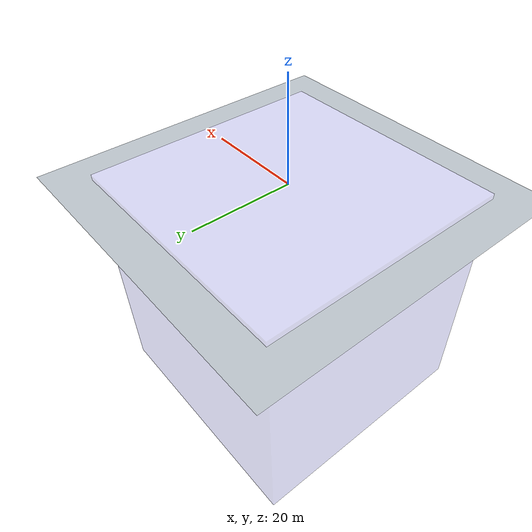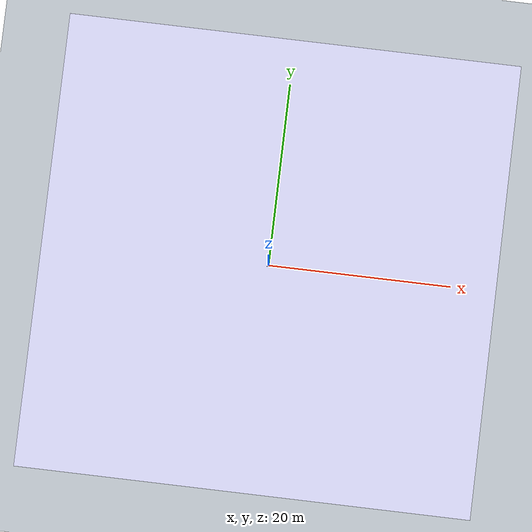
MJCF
<?xml version="1.0" ?>
<mujoco model="animat_0">
  <compiler boundmass="1e-10" boundinertia="1.0000000000000001e-15" balanceinertia="false" angle="radian" eulerseq="xyz" discardvisual="false" fusestatic="true" inertiafromgeom="false">
    <lengthrange mode="none" useexisting="true"/>
  </compiler>
  <option timestep="0.001" gravity="0 0 -9.8100000000000005" impratio="10" integrator="implicitfast" cone="elliptic" solver="CG" iterations="50" noslip_iterations="1000" noslip_tolerance="9.9999999999999995e-07" ccd_iterations="1000" ccd_tolerance="9.9999999999999995e-07">
    <flag energy="enable"/>
  </option>
  <size njmax="4096" nconmax="4096" nkey="1"/>
  <visual>
    <global offwidth="1280" offheight="720"/>
    <quality shadowsize="1024" offsamples="4" numslices="28" numstacks="16" numquads="4"/>
    <map stiffness="100" stiffnessrot="500" force="1" torque="1" alpha="0.29999999999999999" fogstart="3" fogend="10" znear="1.0000000000000001e-05" zfar="3" haze="0.29999999999999999" shadowclip="1" shadowscale="0.29999999999999999" actuatortendon="2"/>
    <scale forcewidth="0.01" contactwidth="0.029999999999999999" contactheight="0.01" connect="0.01" com="0.01" camera="0.10000000000000001" light="0.10000000000000001" selectpoint="0.01" jointlength="0.01" jointwidth="0.01" actuatorlength="0.01" actuatorwidth="0.01" framelength="0.01" framewidth="0.01" constraint="0.01" slidercrank="0.01"/>
  </visual>
  <statistic meanmass="0" meaninertia="0" meansize="0" extent="100"/>
  <default>
    <default class="/"/>
  </default>
  <asset>
    <texture name="texture_grid" type="2d" builtin="checker" rgb1="0.10000000000000001 0.20000000000000001 0.29999999999999999" rgb2="0.20000000000000001 0.29999999999999999 0.40000000000000002" mark="edge" markrgb="0.20000000000000001 0.29999999999999999 0.40000000000000002" width="300" height="300"/>
    <material name="material_grid" class="/" texture="texture_grid" texrepeat="1 1" texuniform="true" reflectance="0.20000000000000001"/>
    <material name="material_water_visual" class="/" rgba="0.5 0.5 0.90000000000000002 0.29999999999999999"/>
    <material name="a0_material_base_link_visual" class="/" rgba="1 1 0 1"/>
    <texture name="skybox" type="skybox" builtin="gradient" rgb1="0.40000000000000002 0.59999999999999998 0.80000000000000004" rgb2="0 0 0" mark="random" markrgb="1 1 1" width="800" height="800"/>
  </asset>
  <worldbody>
    <body name="arena_flat" pos="0 0 -1" quat="1 0 0 0">
      <body name="floor" pos="0 0 0" quat="1 0 0 0">
        <geom name="floor_collision" class="/" type="plane" contype="1" conaffinity="1" condim="3" group="2" size="100 100 1" material="material_grid" friction="0 0 0" margin="0" pos="0 0 0" quat="1 0 0 0"/>
        <geom name="floor_visual" class="/" type="plane" contype="0" conaffinity="0" group="1" size="100 100 1" material="material_grid" pos="0 0 0" quat="1 0 0 0"/>
      </body>
    </body>
    <body name="arena_water" pos="0 0 0" quat="1 0 0 0">
      <body name="water" pos="0 0 0" quat="1 0 0 0">
        <geom name="water_visual" class="/" type="box" contype="0" conaffinity="0" group="1" size="25 25 25" material="material_water_visual" pos="0 0 -25" quat="1 0 0 0"/>
      </body>
    </body>
    <body name="a0_sphere" pos="-0.14999999999999999 -0.14999999999999999 0.20000000000000001" quat="0.2298488470659302 -0.42073549240394825 0.42073549240394825 0.77015115293406988">
      <freejoint name="a0_root_sphere"/>
      <body name="a0_base_link" pos="0 0 0" quat="1 0 0 0">
        <geom name="a0_base_link_collision" class="/" type="sphere" contype="1" conaffinity="0" condim="3" group="2" size="0.050000000000000003 0.050000000000000003 0.050000000000000003" friction="0.5 0 0" margin="0" pos="0 0 0" quat="1 0 0 0" fluidshape="ellipsoid" fluidcoef="0 0 0 0 0"/>
        <geom name="a0_base_link_visual" class="/" type="sphere" contype="0" conaffinity="0" group="1" size="0.050000000000000003 0.050000000000000003 0.050000000000000003" material="a0_material_base_link_visual" pos="0 0 0" quat="1 0 0 0"/>
        <inertial pos="0 0 0" mass="0.52359877559829893" fullinertia="0.00052359877559829903 0.00052359877559829903 0.00052359877559829903 0 0 0"/>
      </body>
      <light name="light_animat" class="/" mode="trackcom" directional="false" castshadow="true" active="true" pos="-1.98411064855555 1.5317172526439542 2.1718994434000241" dir="1.98411064855555 -1.5317172526439542 -2.1718994434000241" attenuation="1 0 0" cutoff="45" exponent="1" ambient="0 0 0" diffuse="0.69999999999999996 0.69999999999999996 0.69999999999999996" specular="0.29999999999999999 0.29999999999999999 0.29999999999999999"/>
      <camera name="camera_a0_sphere_0" class="/" mode="trackcom" fovy="70" ipd="0.068000000000000005" pos="-0.78603555171443096 0.40200966954889555 -0.46961296514276324" quat="0.27542341010122051 0.43610111656089062 -0.73798529707964111 -0.43512694997762813"/>
      <camera name="camera_a0_sphere_1" class="/" mode="trackcom" fovy="70" ipd="0.068000000000000005" pos="-0.84147098480789662 0.45464871341284085 0.29192658172642888" quat="0.2298488470659302 0.42073549240394825 -0.42073549240394825 -0.77015115293406988"/>
      <camera name="camera_a0_sphere_2" class="/" mode="trackcom" fovy="70" ipd="0.068000000000000005" pos="-0.16829419696157943 0.63123204855070791 -0.78308566846261085" quat="-0.061350494137226819 0.4754839260532876 -0.79306565322219713 -0.37576325341006905"/>
      <camera name="camera_a0_sphere_3" class="/" mode="trackcom" fovy="70" ipd="0.068000000000000005" pos="0.37200810890656044 0.79900316095613944 0.51303402975812662" quat="-0.65882410368484157 0.25680887913751171 -0.41562693777745346 -0.57206140281768436"/>
    </body>
  </worldbody>
  <sensor>
    <framelinvel name="framelinvel_a0_sphere" objtype="body" objname="a0_sphere"/>
    <frameangvel name="frameangvel_a0_sphere" objtype="body" objname="a0_sphere"/>
    <framelinvel name="framelinvel_a0_base_link" objtype="body" objname="a0_base_link"/>
    <frameangvel name="frameangvel_a0_base_link" objtype="body" objname="a0_base_link"/>
  </sensor>
  <keyframe>
    <key name="initial" time="0" qpos="-0.14999999999999999 -0.14999999999999999 0.20000000000000001 0.2298488470659302 -0.42073549240394825 0.42073549240394825 0.77015115293406988" qvel="-1 1 -1 10 10 10"/>
  </keyframe>
</mujoco>
